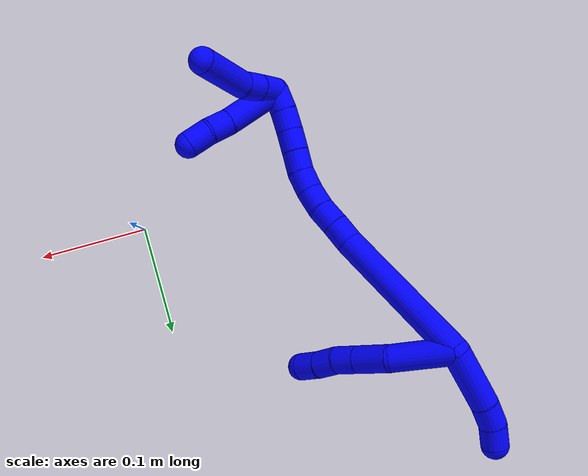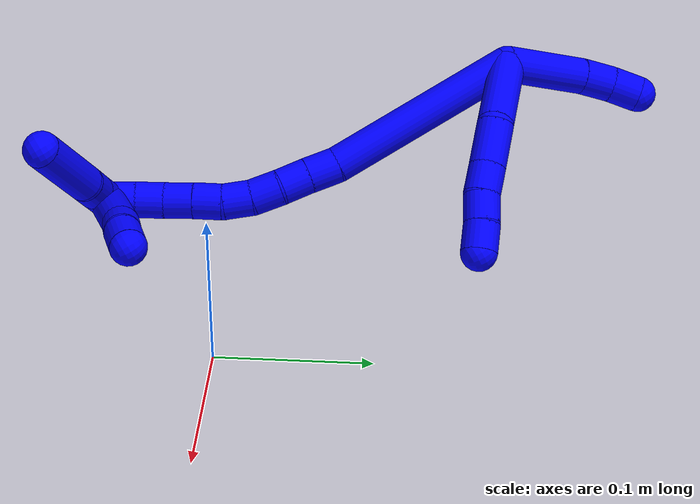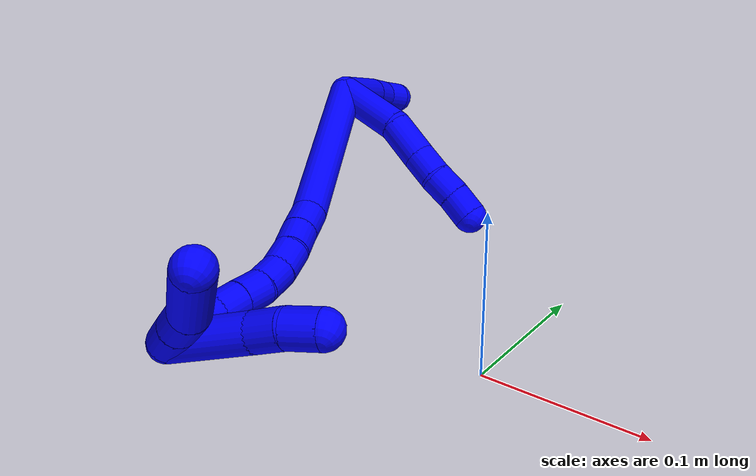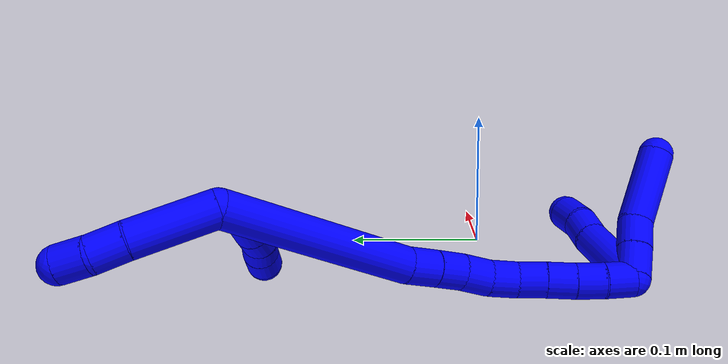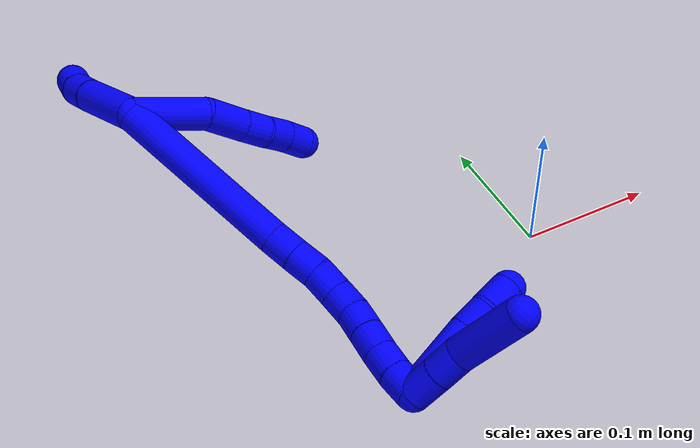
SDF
<sdf version="1.7">
 <world name="default">
  <model name="1">
   <static>0</static>
   <link name="1">
    <collision name="collision-cylinder-e_1_2_8">
     <pose>0.011072 0.019899 -0.017059 -2.27952 0.399695 -0.829764</pose>
     <geometry><cylinder><radius>0.0125</radius><length>0.056906</length></cylinder></geometry>
     <surface>
      <friction><ode><mu>1.16</mu><mu2>1.16</mu2><slip1>0</slip1><slip2>0</slip2></ode></friction>
      <contact><ode><kp>1e+06</kp><kd>1</kd><max_vel>0</max_vel><min_depth>0.001</min_depth></ode></contact>
     </surface>
    </collision>
    <visual name="visual-cylinder-e_1_2_8">
     <pose>0.011072 0.019899 -0.017059 -2.27952 0.399695 -0.829764</pose>
     <geometry><cylinder><radius>0.0125</radius><length>0.056906</length></cylinder></geometry>
     <material><ambient>0 0 1 1</ambient></material>
    </visual>
    <collision name="collision-cylinder-e_2_8_9">
     <pose>0.023258 0.051787 -0.044774 -2.29732 0.06935 -0.154162</pose>
     <geometry><cylinder><radius>0.0125</radius><length>0.032158</length></cylinder></geometry>
     <surface>
      <friction><ode><mu>1.16</mu><mu2>1.16</mu2><slip1>0</slip1><slip2>0</slip2></ode></friction>
      <contact><ode><kp>1e+06</kp><kd>1</kd><max_vel>0</max_vel><min_depth>0.001</min_depth></ode></contact>
     </surface>
    </collision>
    <visual name="visual-cylinder-e_2_8_9">
     <pose>0.023258 0.051787 -0.044774 -2.29732 0.06935 -0.154162</pose>
     <geometry><cylinder><radius>0.0125</radius><length>0.032158</length></cylinder></geometry>
     <material><ambient>0 0 1 1</ambient></material>
    </visual>
    <collision name="collision-cylinder-e_3_9_10">
     <pose>0.025401 0.071418 -0.062319 -2.30454 0.099617 -0.223212</pose>
     <geometry><cylinder><radius>0.0125</radius><length>0.02068</length></cylinder></geometry>
     <surface>
      <friction><ode><mu>1.16</mu><mu2>1.16</mu2><slip1>0</slip1><slip2>0</slip2></ode></friction>
      <contact><ode><kp>1e+06</kp><kd>1</kd><max_vel>0</max_vel><min_depth>0.001</min_depth></ode></contact>
     </surface>
    </collision>
    <visual name="visual-cylinder-e_3_9_10">
     <pose>0.025401 0.071418 -0.062319 -2.30454 0.099617 -0.223212</pose>
     <geometry><cylinder><radius>0.0125</radius><length>0.02068</length></cylinder></geometry>
     <material><ambient>0 0 1 1</ambient></material>
    </visual>
    <collision name="collision-cylinder-e_4_10_11">
     <pose>0.026943 0.087725 -0.074418 -2.11209 0.050753 -0.08969</pose>
     <geometry><cylinder><radius>0.0125</radius><length>0.020248</length></cylinder></geometry>
     <surface>
      <friction><ode><mu>1.16</mu><mu2>1.16</mu2><slip1>0</slip1><slip2>0</slip2></ode></friction>
      <contact><ode><kp>1e+06</kp><kd>1</kd><max_vel>0</max_vel><min_depth>0.001</min_depth></ode></contact>
     </surface>
    </collision>
    <visual name="visual-cylinder-e_4_10_11">
     <pose>0.026943 0.087725 -0.074418 -2.11209 0.050753 -0.08969</pose>
     <geometry><cylinder><radius>0.0125</radius><length>0.020248</length></cylinder></geometry>
     <material><ambient>0 0 1 1</ambient></material>
    </visual>
    <collision name="collision-cylinder-e_5_11_6">
     <pose>0.027587 0.104357 -0.085677 -2.22018 0.013015 -0.026221</pose>
     <geometry><cylinder><radius>0.0125</radius><length>0.020009</length></cylinder></geometry>
     <surface>
      <friction><ode><mu>1.16</mu><mu2>1.16</mu2><slip1>0</slip1><slip2>0</slip2></ode></friction>
      <contact><ode><kp>1e+06</kp><kd>1</kd><max_vel>0</max_vel><min_depth>0.001</min_depth></ode></contact>
     </surface>
    </collision>
    <visual name="visual-cylinder-e_5_11_6">
     <pose>0.027587 0.104357 -0.085677 -2.22018 0.013015 -0.026221</pose>
     <geometry><cylinder><radius>0.0125</radius><length>0.020009</length></cylinder></geometry>
     <material><ambient>0 0 1 1</ambient></material>
    </visual>
    <collision name="collision-cylinder-e_1_2_12">
     <pose>-0.011391 0.013854 0.021915 -0.563725 -0.413978 0.121469</pose>
     <geometry><cylinder><radius>0.0125</radius><length>0.056637</length></cylinder></geometry>
     <surface>
      <friction><ode><mu>1.16</mu><mu2>1.16</mu2><slip1>0</slip1><slip2>0</slip2></ode></friction>
      <contact><ode><kp>1e+06</kp><kd>1</kd><max_vel>0</max_vel><min_depth>0.001</min_depth></ode></contact>
     </surface>
    </collision>
    <visual name="visual-cylinder-e_1_2_12">
     <pose>-0.011391 0.013854 0.021915 -0.563725 -0.413978 0.121469</pose>
     <geometry><cylinder><radius>0.0125</radius><length>0.056637</length></cylinder></geometry>
     <material><ambient>0 0 1 1</ambient></material>
    </visual>
    <collision name="collision-cylinder-e_2_12_13">
     <pose>-0.027215 0.034308 0.051926 -0.684015 -0.401277 0.14455</pose>
     <geometry><cylinder><radius>0.0125</radius><length>0.022695</length></cylinder></geometry>
     <surface>
      <friction><ode><mu>1.16</mu><mu2>1.16</mu2><slip1>0</slip1><slip2>0</slip2></ode></friction>
      <contact><ode><kp>1e+06</kp><kd>1</kd><max_vel>0</max_vel><min_depth>0.001</min_depth></ode></contact>
     </surface>
    </collision>
    <visual name="visual-cylinder-e_2_12_13">
     <pose>-0.027215 0.034308 0.051926 -0.684015 -0.401277 0.14455</pose>
     <geometry><cylinder><radius>0.0125</radius><length>0.022695</length></cylinder></geometry>
     <material><ambient>0 0 1 1</ambient></material>
    </visual>
    <collision name="collision-cylinder-e_3_13_5">
     <pose>-0.033746 0.048589 0.066611 -0.861714 -0.204538 0.094277</pose>
     <geometry><cylinder><radius>0.0125</radius><length>0.020667</length></cylinder></geometry>
     <surface>
      <friction><ode><mu>1.16</mu><mu2>1.16</mu2><slip1>0</slip1><slip2>0</slip2></ode></friction>
      <contact><ode><kp>1e+06</kp><kd>1</kd><max_vel>0</max_vel><min_depth>0.001</min_depth></ode></contact>
     </surface>
    </collision>
    <visual name="visual-cylinder-e_3_13_5">
     <pose>-0.033746 0.048589 0.066611 -0.861714 -0.204538 0.094277</pose>
     <geometry><cylinder><radius>0.0125</radius><length>0.020667</length></cylinder></geometry>
     <material><ambient>0 0 1 1</ambient></material>
    </visual>
    <collision name="collision-cylinder-e_1_2_14">
     <pose>-0.000697 0.000275 -0.0688 -3.13759 -0.010128 2.38857</pose>
     <geometry><cylinder><radius>0.0125</radius><length>0.137607</length></cylinder></geometry>
     <surface>
      <friction><ode><mu>1.16</mu><mu2>1.16</mu2><slip1>0</slip1><slip2>0</slip2></ode></friction>
      <contact><ode><kp>1e+06</kp><kd>1</kd><max_vel>0</max_vel><min_depth>0.001</min_depth></ode></contact>
     </surface>
    </collision>
    <visual name="visual-cylinder-e_1_2_14">
     <pose>-0.000697 0.000275 -0.0688 -3.13759 -0.010128 2.38857</pose>
     <geometry><cylinder><radius>0.0125</radius><length>0.137607</length></cylinder></geometry>
     <material><ambient>0 0 1 1</ambient></material>
    </visual>
    <collision name="collision-cylinder-e_2_14_15">
     <pose>-0.000426 -0.001012 -0.148116 2.99407 0.090804 1.10249</pose>
     <geometry><cylinder><radius>0.0125</radius><length>0.021352</length></cylinder></geometry>
     <surface>
      <friction><ode><mu>1.16</mu><mu2>1.16</mu2><slip1>0</slip1><slip2>0</slip2></ode></friction>
      <contact><ode><kp>1e+06</kp><kd>1</kd><max_vel>0</max_vel><min_depth>0.001</min_depth></ode></contact>
     </surface>
    </collision>
    <visual name="visual-cylinder-e_2_14_15">
     <pose>-0.000426 -0.001012 -0.148116 2.99407 0.090804 1.10249</pose>
     <geometry><cylinder><radius>0.0125</radius><length>0.021352</length></cylinder></geometry>
     <material><ambient>0 0 1 1</ambient></material>
    </visual>
    <collision name="collision-cylinder-e_3_15_16">
     <pose>0.001505 -0.003632 -0.168707 3.03705 0.09473 1.47226</pose>
     <geometry><cylinder><radius>0.0125</radius><length>0.020352</length></cylinder></geometry>
     <surface>
      <friction><ode><mu>1.16</mu><mu2>1.16</mu2><slip1>0</slip1><slip2>0</slip2></ode></friction>
      <contact><ode><kp>1e+06</kp><kd>1</kd><max_vel>0</max_vel><min_depth>0.001</min_depth></ode></contact>
     </surface>
    </collision>
    <visual name="visual-cylinder-e_3_15_16">
     <pose>0.001505 -0.003632 -0.168707 3.03705 0.09473 1.47226</pose>
     <geometry><cylinder><radius>0.0125</radius><length>0.020352</length></cylinder></geometry>
     <material><ambient>0 0 1 1</ambient></material>
    </visual>
    <collision name="collision-cylinder-e_4_16_17">
     <pose>0.002036 -0.006709 -0.18887 2.94392 -0.041924 -0.416722</pose>
     <geometry><cylinder><radius>0.0125</radius><length>0.020592</length></cylinder></geometry>
     <surface>
      <friction><ode><mu>1.16</mu><mu2>1.16</mu2><slip1>0</slip1><slip2>0</slip2></ode></friction>
      <contact><ode><kp>1e+06</kp><kd>1</kd><max_vel>0</max_vel><min_depth>0.001</min_depth></ode></contact>
     </surface>
    </collision>
    <visual name="visual-cylinder-e_4_16_17">
     <pose>0.002036 -0.006709 -0.18887 2.94392 -0.041924 -0.416722</pose>
     <geometry><cylinder><radius>0.0125</radius><length>0.020592</length></cylinder></geometry>
     <material><ambient>0 0 1 1</ambient></material>
    </visual>
    <collision name="collision-cylinder-e_5_17_18">
     <pose>0.001974 -0.012525 -0.208251 2.75385 0.036771 0.186765</pose>
     <geometry><cylinder><radius>0.0125</radius><length>0.020093</length></cylinder></geometry>
     <surface>
      <friction><ode><mu>1.16</mu><mu2>1.16</mu2><slip1>0</slip1><slip2>0</slip2></ode></friction>
      <contact><ode><kp>1e+06</kp><kd>1</kd><max_vel>0</max_vel><min_depth>0.001</min_depth></ode></contact>
     </surface>
    </collision>
    <visual name="visual-cylinder-e_5_17_18">
     <pose>0.001974 -0.012525 -0.208251 2.75385 0.036771 0.186765</pose>
     <geometry><cylinder><radius>0.0125</radius><length>0.020093</length></cylinder></geometry>
     <material><ambient>0 0 1 1</ambient></material>
    </visual>
    <collision name="collision-cylinder-e_6_18_19">
     <pose>0.002441 -0.021968 -0.225799 2.54161 0.009735 0.031469</pose>
     <geometry><cylinder><radius>0.0125</radius><length>0.020001</length></cylinder></geometry>
     <surface>
      <friction><ode><mu>1.16</mu><mu2>1.16</mu2><slip1>0</slip1><slip2>0</slip2></ode></friction>
      <contact><ode><kp>1e+06</kp><kd>1</kd><max_vel>0</max_vel><min_depth>0.001</min_depth></ode></contact>
     </surface>
    </collision>
    <visual name="visual-cylinder-e_6_18_19">
     <pose>0.002441 -0.021968 -0.225799 2.54161 0.009735 0.031469</pose>
     <geometry><cylinder><radius>0.0125</radius><length>0.020001</length></cylinder></geometry>
     <material><ambient>0 0 1 1</ambient></material>
    </visual>
    <collision name="collision-cylinder-e_7_19_20">
     <pose>0.002386 -0.032966 -0.242499 2.57681 -0.015167 -0.052264</pose>
     <geometry><cylinder><radius>0.0125</radius><length>0.020001</length></cylinder></geometry>
     <surface>
      <friction><ode><mu>1.16</mu><mu2>1.16</mu2><slip1>0</slip1><slip2>0</slip2></ode></friction>
      <contact><ode><kp>1e+06</kp><kd>1</kd><max_vel>0</max_vel><min_depth>0.001</min_depth></ode></contact>
     </surface>
    </collision>
    <visual name="visual-cylinder-e_7_19_20">
     <pose>0.002386 -0.032966 -0.242499 2.57681 -0.015167 -0.052264</pose>
     <geometry><cylinder><radius>0.0125</radius><length>0.020001</length></cylinder></geometry>
     <material><ambient>0 0 1 1</ambient></material>
    </visual>
    <collision name="collision-cylinder-e_8_20_21">
     <pose>0.002649 -0.04371 -0.259356 2.5715 0.041435 0.141191</pose>
     <geometry><cylinder><radius>0.0125</radius><length>0.02</length></cylinder></geometry>
     <surface>
      <friction><ode><mu>1.16</mu><mu2>1.16</mu2><slip1>0</slip1><slip2>0</slip2></ode></friction>
      <contact><ode><kp>1e+06</kp><kd>1</kd><max_vel>0</max_vel><min_depth>0.001</min_depth></ode></contact>
     </surface>
    </collision>
    <visual name="visual-cylinder-e_8_20_21">
     <pose>0.002649 -0.04371 -0.259356 2.5715 0.041435 0.141191</pose>
     <geometry><cylinder><radius>0.0125</radius><length>0.02</length></cylinder></geometry>
     <material><ambient>0 0 1 1</ambient></material>
    </visual>
    <collision name="collision-cylinder-e_9_21_1">
     <pose>0.004263 -0.053944 -0.276436 2.63225 0.120269 0.454569</pose>
     <geometry><cylinder><radius>0.0125</radius><length>0.020001</length></cylinder></geometry>
     <surface>
      <friction><ode><mu>1.16</mu><mu2>1.16</mu2><slip1>0</slip1><slip2>0</slip2></ode></friction>
      <contact><ode><kp>1e+06</kp><kd>1</kd><max_vel>0</max_vel><min_depth>0.001</min_depth></ode></contact>
     </surface>
    </collision>
    <visual name="visual-cylinder-e_9_21_1">
     <pose>0.004263 -0.053944 -0.276436 2.63225 0.120269 0.454569</pose>
     <geometry><cylinder><radius>0.0125</radius><length>0.020001</length></cylinder></geometry>
     <material><ambient>0 0 1 1</ambient></material>
    </visual>
    <collision name="collision-cylinder-e_1_1_22">
     <pose>0.016939 -0.05924 -0.286829 2.8835 1.41657 2.84088</pose>
     <geometry><cylinder><radius>0.0125</radius><length>0.023228</length></cylinder></geometry>
     <surface>
      <friction><ode><mu>1.16</mu><mu2>1.16</mu2><slip1>0</slip1><slip2>0</slip2></ode></friction>
      <contact><ode><kp>1e+06</kp><kd>1</kd><max_vel>0</max_vel><min_depth>0.001</min_depth></ode></contact>
     </surface>
    </collision>
    <visual name="visual-cylinder-e_1_1_22">
     <pose>0.016939 -0.05924 -0.286829 2.8835 1.41657 2.84088</pose>
     <geometry><cylinder><radius>0.0125</radius><length>0.023228</length></cylinder></geometry>
     <material><ambient>0 0 1 1</ambient></material>
    </visual>
    <collision name="collision-cylinder-e_2_22_23">
     <pose>0.038958 -0.059877 -0.289981 3.01482 1.43516 2.99641</pose>
     <geometry><cylinder><radius>0.0125</radius><length>0.021281</length></cylinder></geometry>
     <surface>
      <friction><ode><mu>1.16</mu><mu2>1.16</mu2><slip1>0</slip1><slip2>0</slip2></ode></friction>
      <contact><ode><kp>1e+06</kp><kd>1</kd><max_vel>0</max_vel><min_depth>0.001</min_depth></ode></contact>
     </surface>
    </collision>
    <visual name="visual-cylinder-e_2_22_23">
     <pose>0.038958 -0.059877 -0.289981 3.01482 1.43516 2.99641</pose>
     <geometry><cylinder><radius>0.0125</radius><length>0.021281</length></cylinder></geometry>
     <material><ambient>0 0 1 1</ambient></material>
    </visual>
    <collision name="collision-cylinder-e_3_23_4">
     <pose>0.075591 -0.067113 -0.297683 2.29785 1.22361 2.00339</pose>
     <geometry><cylinder><radius>0.0125</radius><length>0.055491</length></cylinder></geometry>
     <surface>
      <friction><ode><mu>1.16</mu><mu2>1.16</mu2><slip1>0</slip1><slip2>0</slip2></ode></friction>
      <contact><ode><kp>1e+06</kp><kd>1</kd><max_vel>0</max_vel><min_depth>0.001</min_depth></ode></contact>
     </surface>
    </collision>
    <visual name="visual-cylinder-e_3_23_4">
     <pose>0.075591 -0.067113 -0.297683 2.29785 1.22361 2.00339</pose>
     <geometry><cylinder><radius>0.0125</radius><length>0.055491</length></cylinder></geometry>
     <material><ambient>0 0 1 1</ambient></material>
    </visual>
    <collision name="collision-cylinder-e_1_1_24">
     <pose>0.027214 -0.0408 -0.284874 -1.55801 0.879852 -0.870039</pose>
     <geometry><cylinder><radius>0.0125</radius><length>0.056448</length></cylinder></geometry>
     <surface>
      <friction><ode><mu>1.16</mu><mu2>1.16</mu2><slip1>0</slip1><slip2>0</slip2></ode></friction>
      <contact><ode><kp>1e+06</kp><kd>1</kd><max_vel>0</max_vel><min_depth>0.001</min_depth></ode></contact>
     </surface>
    </collision>
    <visual name="visual-cylinder-e_1_1_24">
     <pose>0.027214 -0.0408 -0.284874 -1.55801 0.879852 -0.870039</pose>
     <geometry><cylinder><radius>0.0125</radius><length>0.056448</length></cylinder></geometry>
     <material><ambient>0 0 1 1</ambient></material>
    </visual>
    <collision name="collision-cylinder-e_2_24_25">
     <pose>0.057771 -0.016994 -0.285392 -1.69864 0.982995 -1.09333</pose>
     <geometry><cylinder><radius>0.0125</radius><length>0.021166</length></cylinder></geometry>
     <surface>
      <friction><ode><mu>1.16</mu><mu2>1.16</mu2><slip1>0</slip1><slip2>0</slip2></ode></friction>
      <contact><ode><kp>1e+06</kp><kd>1</kd><max_vel>0</max_vel><min_depth>0.001</min_depth></ode></contact>
     </surface>
    </collision>
    <visual name="visual-cylinder-e_2_24_25">
     <pose>0.057771 -0.016994 -0.285392 -1.69864 0.982995 -1.09333</pose>
     <geometry><cylinder><radius>0.0125</radius><length>0.021166</length></cylinder></geometry>
     <material><ambient>0 0 1 1</ambient></material>
    </visual>
    <collision name="collision-cylinder-e_3_25_3">
     <pose>0.074292 -0.003099 -0.286889 -1.66322 0.760431 -0.826363</pose>
     <geometry><cylinder><radius>0.0125</radius><length>0.022385</length></cylinder></geometry>
     <surface>
      <friction><ode><mu>1.16</mu><mu2>1.16</mu2><slip1>0</slip1><slip2>0</slip2></ode></friction>
      <contact><ode><kp>1e+06</kp><kd>1</kd><max_vel>0</max_vel><min_depth>0.001</min_depth></ode></contact>
     </surface>
    </collision>
    <visual name="visual-cylinder-e_3_25_3">
     <pose>0.074292 -0.003099 -0.286889 -1.66322 0.760431 -0.826363</pose>
     <geometry><cylinder><radius>0.0125</radius><length>0.022385</length></cylinder></geometry>
     <material><ambient>0 0 1 1</ambient></material>
    </visual>
    <collision name="collision-sphere-3">
     <pose>0.082007 0.004976 -0.287637 0 -0 0</pose>
     <geometry><sphere><radius>0.0125</radius></sphere></geometry>
     <surface>
      <friction><ode><mu>1.16</mu><mu2>1.16</mu2><slip1>0</slip1><slip2>0</slip2></ode></friction>
      <contact><ode><kp>1e+06</kp><kd>1</kd><max_vel>0</max_vel><min_depth>0.001</min_depth></ode></contact>
     </surface>
    </collision>
    <visual name="visual-sphere-3">
     <pose>0.082007 0.004976 -0.287637 0 -0 0</pose>
     <geometry><sphere><radius>0.0125</radius></sphere></geometry>
     <material><ambient>0 0 1 1</ambient></material>
    </visual>
    <collision name="collision-sphere-25">
     <pose>0.066578 -0.011174 -0.28614 0 -0 0</pose>
     <geometry><sphere><radius>0.0125</radius></sphere></geometry>
     <surface>
      <friction><ode><mu>1.16</mu><mu2>1.16</mu2><slip1>0</slip1><slip2>0</slip2></ode></friction>
      <contact><ode><kp>1e+06</kp><kd>1</kd><max_vel>0</max_vel><min_depth>0.001</min_depth></ode></contact>
     </surface>
    </collision>
    <visual name="visual-sphere-25">
     <pose>0.066578 -0.011174 -0.28614 0 -0 0</pose>
     <geometry><sphere><radius>0.0125</radius></sphere></geometry>
     <material><ambient>0 0 1 1</ambient></material>
    </visual>
    <collision name="collision-sphere-24">
     <pose>0.048964 -0.022815 -0.284644 0 -0 0</pose>
     <geometry><sphere><radius>0.0125</radius></sphere></geometry>
     <surface>
      <friction><ode><mu>1.16</mu><mu2>1.16</mu2><slip1>0</slip1><slip2>0</slip2></ode></friction>
      <contact><ode><kp>1e+06</kp><kd>1</kd><max_vel>0</max_vel><min_depth>0.001</min_depth></ode></contact>
     </surface>
    </collision>
    <visual name="visual-sphere-24">
     <pose>0.048964 -0.022815 -0.284644 0 -0 0</pose>
     <geometry><sphere><radius>0.0125</radius></sphere></geometry>
     <material><ambient>0 0 1 1</ambient></material>
    </visual>
    <collision name="collision-sphere-4">
     <pose>0.101681 -0.074166 -0.303958 0 -0 0</pose>
     <geometry><sphere><radius>0.0125</radius></sphere></geometry>
     <surface>
      <friction><ode><mu>1.16</mu><mu2>1.16</mu2><slip1>0</slip1><slip2>0</slip2></ode></friction>
      <contact><ode><kp>1e+06</kp><kd>1</kd><max_vel>0</max_vel><min_depth>0.001</min_depth></ode></contact>
     </surface>
    </collision>
    <visual name="visual-sphere-4">
     <pose>0.101681 -0.074166 -0.303958 0 -0 0</pose>
     <geometry><sphere><radius>0.0125</radius></sphere></geometry>
     <material><ambient>0 0 1 1</ambient></material>
    </visual>
    <collision name="collision-sphere-23">
     <pose>0.049501 -0.060059 -0.291408 0 -0 0</pose>
     <geometry><sphere><radius>0.0125</radius></sphere></geometry>
     <surface>
      <friction><ode><mu>1.16</mu><mu2>1.16</mu2><slip1>0</slip1><slip2>0</slip2></ode></friction>
      <contact><ode><kp>1e+06</kp><kd>1</kd><max_vel>0</max_vel><min_depth>0.001</min_depth></ode></contact>
     </surface>
    </collision>
    <visual name="visual-sphere-23">
     <pose>0.049501 -0.060059 -0.291408 0 -0 0</pose>
     <geometry><sphere><radius>0.0125</radius></sphere></geometry>
     <material><ambient>0 0 1 1</ambient></material>
    </visual>
    <collision name="collision-sphere-22">
     <pose>0.028415 -0.059695 -0.288554 0 -0 0</pose>
     <geometry><sphere><radius>0.0125</radius></sphere></geometry>
     <surface>
      <friction><ode><mu>1.16</mu><mu2>1.16</mu2><slip1>0</slip1><slip2>0</slip2></ode></friction>
      <contact><ode><kp>1e+06</kp><kd>1</kd><max_vel>0</max_vel><min_depth>0.001</min_depth></ode></contact>
     </surface>
    </collision>
    <visual name="visual-sphere-22">
     <pose>0.028415 -0.059695 -0.288554 0 -0 0</pose>
     <geometry><sphere><radius>0.0125</radius></sphere></geometry>
     <material><ambient>0 0 1 1</ambient></material>
    </visual>
    <collision name="collision-sphere-1">
     <pose>0.005463 -0.058785 -0.285104 0 -0 0</pose>
     <geometry><sphere><radius>0.0125</radius></sphere></geometry>
     <surface>
      <friction><ode><mu>1.16</mu><mu2>1.16</mu2><slip1>0</slip1><slip2>0</slip2></ode></friction>
      <contact><ode><kp>1e+06</kp><kd>1</kd><max_vel>0</max_vel><min_depth>0.001</min_depth></ode></contact>
     </surface>
    </collision>
    <visual name="visual-sphere-1">
     <pose>0.005463 -0.058785 -0.285104 0 -0 0</pose>
     <geometry><sphere><radius>0.0125</radius></sphere></geometry>
     <material><ambient>0 0 1 1</ambient></material>
    </visual>
    <collision name="collision-sphere-21">
     <pose>0.003063 -0.049103 -0.267768 0 -0 0</pose>
     <geometry><sphere><radius>0.0125</radius></sphere></geometry>
     <surface>
      <friction><ode><mu>1.16</mu><mu2>1.16</mu2><slip1>0</slip1><slip2>0</slip2></ode></friction>
      <contact><ode><kp>1e+06</kp><kd>1</kd><max_vel>0</max_vel><min_depth>0.001</min_depth></ode></contact>
     </surface>
    </collision>
    <visual name="visual-sphere-21">
     <pose>0.003063 -0.049103 -0.267768 0 -0 0</pose>
     <geometry><sphere><radius>0.0125</radius></sphere></geometry>
     <material><ambient>0 0 1 1</ambient></material>
    </visual>
    <collision name="collision-sphere-6">
     <pose>0.027717 0.112325 -0.091726 0 -0 0</pose>
     <geometry><sphere><radius>0.0125</radius></sphere></geometry>
     <surface>
      <friction><ode><mu>1.16</mu><mu2>1.16</mu2><slip1>0</slip1><slip2>0</slip2></ode></friction>
      <contact><ode><kp>1e+06</kp><kd>1</kd><max_vel>0</max_vel><min_depth>0.001</min_depth></ode></contact>
     </surface>
    </collision>
    <visual name="visual-sphere-6">
     <pose>0.027717 0.112325 -0.091726 0 -0 0</pose>
     <geometry><sphere><radius>0.0125</radius></sphere></geometry>
     <material><ambient>0 0 1 1</ambient></material>
    </visual>
    <collision name="collision-sphere-11">
     <pose>0.027456 0.09639 -0.079628 0 -0 0</pose>
     <geometry><sphere><radius>0.0125</radius></sphere></geometry>
     <surface>
      <friction><ode><mu>1.16</mu><mu2>1.16</mu2><slip1>0</slip1><slip2>0</slip2></ode></friction>
      <contact><ode><kp>1e+06</kp><kd>1</kd><max_vel>0</max_vel><min_depth>0.001</min_depth></ode></contact>
     </surface>
    </collision>
    <visual name="visual-sphere-11">
     <pose>0.027456 0.09639 -0.079628 0 -0 0</pose>
     <geometry><sphere><radius>0.0125</radius></sphere></geometry>
     <material><ambient>0 0 1 1</ambient></material>
    </visual>
    <collision name="collision-sphere-10">
     <pose>0.026429 0.079059 -0.069209 0 -0 0</pose>
     <geometry><sphere><radius>0.0125</radius></sphere></geometry>
     <surface>
      <friction><ode><mu>1.16</mu><mu2>1.16</mu2><slip1>0</slip1><slip2>0</slip2></ode></friction>
      <contact><ode><kp>1e+06</kp><kd>1</kd><max_vel>0</max_vel><min_depth>0.001</min_depth></ode></contact>
     </surface>
    </collision>
    <visual name="visual-sphere-10">
     <pose>0.026429 0.079059 -0.069209 0 -0 0</pose>
     <geometry><sphere><radius>0.0125</radius></sphere></geometry>
     <material><ambient>0 0 1 1</ambient></material>
    </visual>
    <collision name="collision-sphere-9">
     <pose>0.024372 0.063777 -0.055429 0 -0 0</pose>
     <geometry><sphere><radius>0.0125</radius></sphere></geometry>
     <surface>
      <friction><ode><mu>1.16</mu><mu2>1.16</mu2><slip1>0</slip1><slip2>0</slip2></ode></friction>
      <contact><ode><kp>1e+06</kp><kd>1</kd><max_vel>0</max_vel><min_depth>0.001</min_depth></ode></contact>
     </surface>
    </collision>
    <visual name="visual-sphere-9">
     <pose>0.024372 0.063777 -0.055429 0 -0 0</pose>
     <geometry><sphere><radius>0.0125</radius></sphere></geometry>
     <material><ambient>0 0 1 1</ambient></material>
    </visual>
    <collision name="collision-sphere-2">
     <geometry><sphere><radius>0.0125</radius></sphere></geometry>
     <surface>
      <friction><ode><mu>1.16</mu><mu2>1.16</mu2><slip1>0</slip1><slip2>0</slip2></ode></friction>
      <contact><ode><kp>1e+06</kp><kd>1</kd><max_vel>0</max_vel><min_depth>0.001</min_depth></ode></contact>
     </surface>
    </collision>
    <visual name="visual-sphere-2">
     <geometry><sphere><radius>0.0125</radius></sphere></geometry>
     <material><ambient>0 0 1 1</ambient></material>
    </visual>
    <collision name="collision-sphere-19">
     <pose>0.002538 -0.027614 -0.234052 0 -0 0</pose>
     <geometry><sphere><radius>0.0125</radius></sphere></geometry>
     <surface>
      <friction><ode><mu>1.16</mu><mu2>1.16</mu2><slip1>0</slip1><slip2>0</slip2></ode></friction>
      <contact><ode><kp>1e+06</kp><kd>1</kd><max_vel>0</max_vel><min_depth>0.001</min_depth></ode></contact>
     </surface>
    </collision>
    <visual name="visual-sphere-19">
     <pose>0.002538 -0.027614 -0.234052 0 -0 0</pose>
     <geometry><sphere><radius>0.0125</radius></sphere></geometry>
     <material><ambient>0 0 1 1</ambient></material>
    </visual>
    <collision name="collision-sphere-8">
     <pose>0.022144 0.039797 -0.034119 0 -0 0</pose>
     <geometry><sphere><radius>0.0125</radius></sphere></geometry>
     <surface>
      <friction><ode><mu>1.16</mu><mu2>1.16</mu2><slip1>0</slip1><slip2>0</slip2></ode></friction>
      <contact><ode><kp>1e+06</kp><kd>1</kd><max_vel>0</max_vel><min_depth>0.001</min_depth></ode></contact>
     </surface>
    </collision>
    <visual name="visual-sphere-8">
     <pose>0.022144 0.039797 -0.034119 0 -0 0</pose>
     <geometry><sphere><radius>0.0125</radius></sphere></geometry>
     <material><ambient>0 0 1 1</ambient></material>
    </visual>
    <collision name="collision-sphere-12">
     <pose>-0.022783 0.027707 0.04383 0 -0 0</pose>
     <geometry><sphere><radius>0.0125</radius></sphere></geometry>
     <surface>
      <friction><ode><mu>1.16</mu><mu2>1.16</mu2><slip1>0</slip1><slip2>0</slip2></ode></friction>
      <contact><ode><kp>1e+06</kp><kd>1</kd><max_vel>0</max_vel><min_depth>0.001</min_depth></ode></contact>
     </surface>
    </collision>
    <visual name="visual-sphere-12">
     <pose>-0.022783 0.027707 0.04383 0 -0 0</pose>
     <geometry><sphere><radius>0.0125</radius></sphere></geometry>
     <material><ambient>0 0 1 1</ambient></material>
    </visual>
    <collision name="collision-sphere-13">
     <pose>-0.031647 0.040909 0.060023 0 -0 0</pose>
     <geometry><sphere><radius>0.0125</radius></sphere></geometry>
     <surface>
      <friction><ode><mu>1.16</mu><mu2>1.16</mu2><slip1>0</slip1><slip2>0</slip2></ode></friction>
      <contact><ode><kp>1e+06</kp><kd>1</kd><max_vel>0</max_vel><min_depth>0.001</min_depth></ode></contact>
     </surface>
    </collision>
    <visual name="visual-sphere-13">
     <pose>-0.031647 0.040909 0.060023 0 -0 0</pose>
     <geometry><sphere><radius>0.0125</radius></sphere></geometry>
     <material><ambient>0 0 1 1</ambient></material>
    </visual>
    <collision name="collision-sphere-5">
     <pose>-0.035845 0.056268 0.073199 0 -0 0</pose>
     <geometry><sphere><radius>0.0125</radius></sphere></geometry>
     <surface>
      <friction><ode><mu>1.16</mu><mu2>1.16</mu2><slip1>0</slip1><slip2>0</slip2></ode></friction>
      <contact><ode><kp>1e+06</kp><kd>1</kd><max_vel>0</max_vel><min_depth>0.001</min_depth></ode></contact>
     </surface>
    </collision>
    <visual name="visual-sphere-5">
     <pose>-0.035845 0.056268 0.073199 0 -0 0</pose>
     <geometry><sphere><radius>0.0125</radius></sphere></geometry>
     <material><ambient>0 0 1 1</ambient></material>
    </visual>
    <collision name="collision-sphere-14">
     <pose>-0.001394 0.000551 -0.137599 0 -0 0</pose>
     <geometry><sphere><radius>0.0125</radius></sphere></geometry>
     <surface>
      <friction><ode><mu>1.16</mu><mu2>1.16</mu2><slip1>0</slip1><slip2>0</slip2></ode></friction>
      <contact><ode><kp>1e+06</kp><kd>1</kd><max_vel>0</max_vel><min_depth>0.001</min_depth></ode></contact>
     </surface>
    </collision>
    <visual name="visual-sphere-14">
     <pose>-0.001394 0.000551 -0.137599 0 -0 0</pose>
     <geometry><sphere><radius>0.0125</radius></sphere></geometry>
     <material><ambient>0 0 1 1</ambient></material>
    </visual>
    <collision name="collision-sphere-15">
     <pose>0.000543 -0.002575 -0.158632 0 -0 0</pose>
     <geometry><sphere><radius>0.0125</radius></sphere></geometry>
     <surface>
      <friction><ode><mu>1.16</mu><mu2>1.16</mu2><slip1>0</slip1><slip2>0</slip2></ode></friction>
      <contact><ode><kp>1e+06</kp><kd>1</kd><max_vel>0</max_vel><min_depth>0.001</min_depth></ode></contact>
     </surface>
    </collision>
    <visual name="visual-sphere-15">
     <pose>0.000543 -0.002575 -0.158632 0 -0 0</pose>
     <geometry><sphere><radius>0.0125</radius></sphere></geometry>
     <material><ambient>0 0 1 1</ambient></material>
    </visual>
    <collision name="collision-sphere-16">
     <pose>0.002468 -0.004689 -0.178783 0 -0 0</pose>
     <geometry><sphere><radius>0.0125</radius></sphere></geometry>
     <surface>
      <friction><ode><mu>1.16</mu><mu2>1.16</mu2><slip1>0</slip1><slip2>0</slip2></ode></friction>
      <contact><ode><kp>1e+06</kp><kd>1</kd><max_vel>0</max_vel><min_depth>0.001</min_depth></ode></contact>
     </surface>
    </collision>
    <visual name="visual-sphere-16">
     <pose>0.002468 -0.004689 -0.178783 0 -0 0</pose>
     <geometry><sphere><radius>0.0125</radius></sphere></geometry>
     <material><ambient>0 0 1 1</ambient></material>
    </visual>
    <collision name="collision-sphere-17">
     <pose>0.001605 -0.008729 -0.198956 0 -0 0</pose>
     <geometry><sphere><radius>0.0125</radius></sphere></geometry>
     <surface>
      <friction><ode><mu>1.16</mu><mu2>1.16</mu2><slip1>0</slip1><slip2>0</slip2></ode></friction>
      <contact><ode><kp>1e+06</kp><kd>1</kd><max_vel>0</max_vel><min_depth>0.001</min_depth></ode></contact>
     </surface>
    </collision>
    <visual name="visual-sphere-17">
     <pose>0.001605 -0.008729 -0.198956 0 -0 0</pose>
     <geometry><sphere><radius>0.0125</radius></sphere></geometry>
     <material><ambient>0 0 1 1</ambient></material>
    </visual>
    <collision name="collision-sphere-18">
     <pose>0.002343 -0.016321 -0.217545 0 -0 0</pose>
     <geometry><sphere><radius>0.0125</radius></sphere></geometry>
     <surface>
      <friction><ode><mu>1.16</mu><mu2>1.16</mu2><slip1>0</slip1><slip2>0</slip2></ode></friction>
      <contact><ode><kp>1e+06</kp><kd>1</kd><max_vel>0</max_vel><min_depth>0.001</min_depth></ode></contact>
     </surface>
    </collision>
    <visual name="visual-sphere-18">
     <pose>0.002343 -0.016321 -0.217545 0 -0 0</pose>
     <geometry><sphere><radius>0.0125</radius></sphere></geometry>
     <material><ambient>0 0 1 1</ambient></material>
    </visual>
    <collision name="collision-sphere-20">
     <pose>0.002235 -0.038318 -0.250945 0 -0 0</pose>
     <geometry><sphere><radius>0.0125</radius></sphere></geometry>
     <surface>
      <friction><ode><mu>1.16</mu><mu2>1.16</mu2><slip1>0</slip1><slip2>0</slip2></ode></friction>
      <contact><ode><kp>1e+06</kp><kd>1</kd><max_vel>0</max_vel><min_depth>0.001</min_depth></ode></contact>
     </surface>
    </collision>
    <visual name="visual-sphere-20">
     <pose>0.002235 -0.038318 -0.250945 0 -0 0</pose>
     <geometry><sphere><radius>0.0125</radius></sphere></geometry>
     <material><ambient>0 0 1 1</ambient></material>
    </visual>
    <inertial>
     <pose>0.014829 -0.002533 -0.140319 0 -0 0</pose>
     <mass>0.75</mass>
     <inertia>
      <ixx>4.4e-05</ixx>
      <ixy>0</ixy>
      <ixz>0</ixz>
      <iyy>0.000346</iyy>
      <iyz>0</iyz>
      <izz>-9.3e-05</izz>
     </inertia>
    </inertial>
   </link>
   <pose>-0.237221 0.177942 0.082032 -0.95483 -0.882214 -0.03847</pose>
  </model>
 </world>
</sdf>
